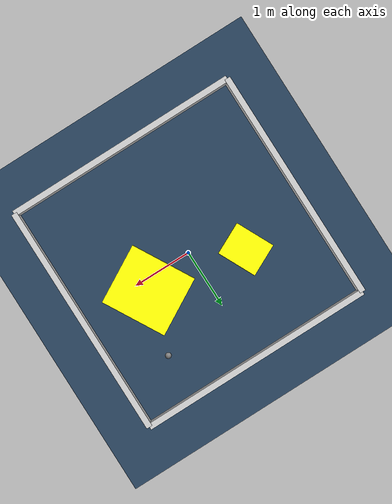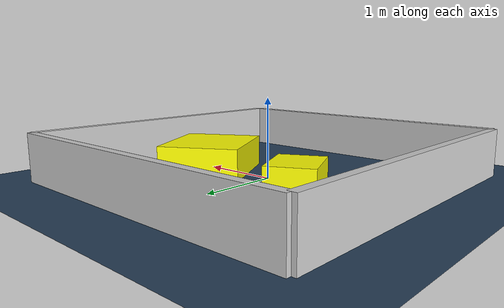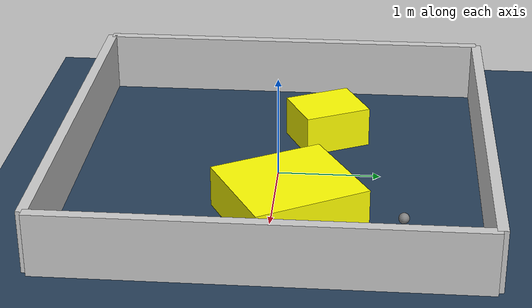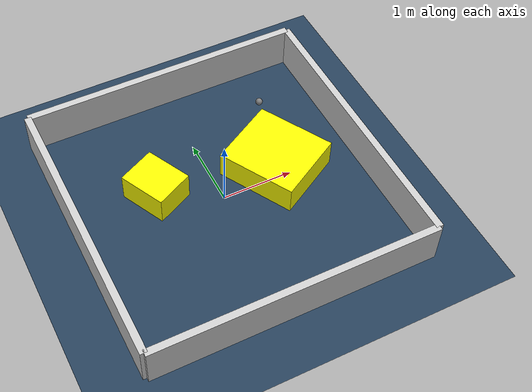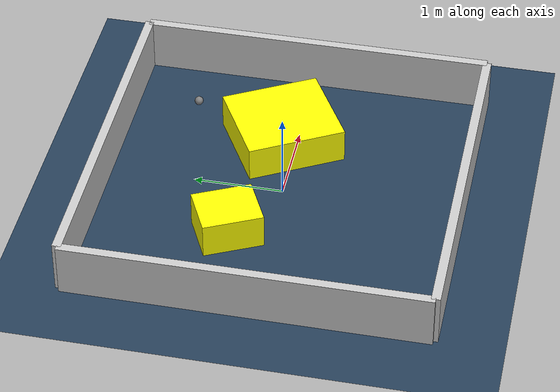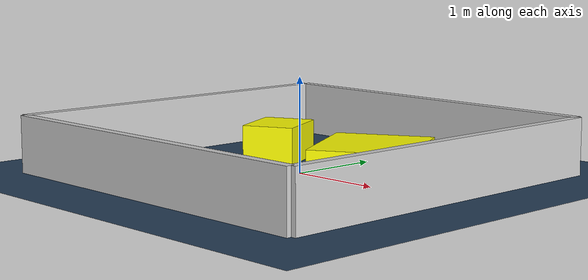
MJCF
<?xml version="1.0" ?>
<mujoco model="generated_environment">
  <option timestep="0.01" integrator="RK4" cone="elliptic"/>
  <default>
    <geom density="1"/>
  </default>
  <asset>
    <texture builtin="gradient" height="3072" rgb1="0.3 0.5 0.7" rgb2="0 0 0" type="skybox" width="512"/>
    <texture builtin="checker" height="300" mark="edge" markrgb="0.8 0.8 0.8" name="groundplane" rgb1="0.2 0.3 0.4" rgb2="0.1 0.2 0.3" type="2d" width="300"/>
    <material name="groundplane" reflectance="0.2" texrepeat="5 5" texture="groundplane" texuniform="true"/>
    <material name="robot" rgba="0.0 1.0 0.0 1"/>
  </asset>
  <worldbody>
    <light dir="0 0 -1" directional="true" pos="0 0 1.5"/>
    <geom condim="4" friction="1.0 0.005 0.001" material="groundplane" name="floor" size="0 0 0.05" type="plane"/>
    <body name="walls">
      <geom name="wall_1" condim="4" pos="-2.0 0.0 0.3" rgba="0.800000011920929 0.800000011920929 0.800000011920929 1.0" size="0.05 2.0 0.3" type="box"/>
      <geom name="wall_2" condim="4" pos="2.0 0.0 0.3" rgba="0.800000011920929 0.800000011920929 0.800000011920929 1.0" size="0.05 2.0 0.3" type="box"/>
      <geom name="wall_3" condim="4" pos="0.0 -2.0 0.3" rgba="0.800000011920929 0.800000011920929 0.800000011920929 1.0" size="2.0 0.05 0.3" type="box"/>
      <geom name="wall_4" condim="4" pos="0.0 2.0 0.3" rgba="0.800000011920929 0.800000011920929 0.800000011920929 1.0" size="2.0 0.05 0.3" type="box"/>
    </body>
    <body name="robot">
      <joint name="joint_x" type="slide" pos="0 0 0" axis="1 0 0"/>
      <joint name="joint_y" type="slide" pos="0 0 0" axis="0 1 0"/>
      <geom name="robot" type="sphere" pos="1.1512773574160886 1.2161204203943372 0.2" size="0.05" mass="5." friction="1.0 0.005 0.0001" condim="4"/>
      <site name="sensor_ball"/>
    </body>
    <body name="obstacle_1_movable">
      <geom name="obstacle_1_movable" condim="4" pos="0.8587689427126897 0.16529683475335522 0.2" euler="0 0 299.43674540141825" friction="1.0 0.005 0.001" rgba="1 1 0 1" size="0.5628320439424086 0.5153268117181609 0.2" type="box" mass="0.1"/>
      <joint type="free"/>
    </body>
    <body name="obstacle_2_movable">
      <geom name="obstacle_2_movable" condim="4" pos="-0.8019284892662025 0.44434478006901923 0.2" euler="0 0 26.09877659637536" friction="1.0 0.005 0.001" rgba="1 1 0 1" size="0.2840975755814969 0.33943817883942573 0.2" type="box" mass="0.1"/>
      <joint type="free"/>
    </body>
  </worldbody>
  <actuator>
    <motor name="actuator_x" joint="joint_x" gear="1" ctrlrange="-1 1"/>
    <motor name="actuator_y" joint="joint_y" gear="1" ctrlrange="-1 1"/>
  </actuator>
</mujoco>
